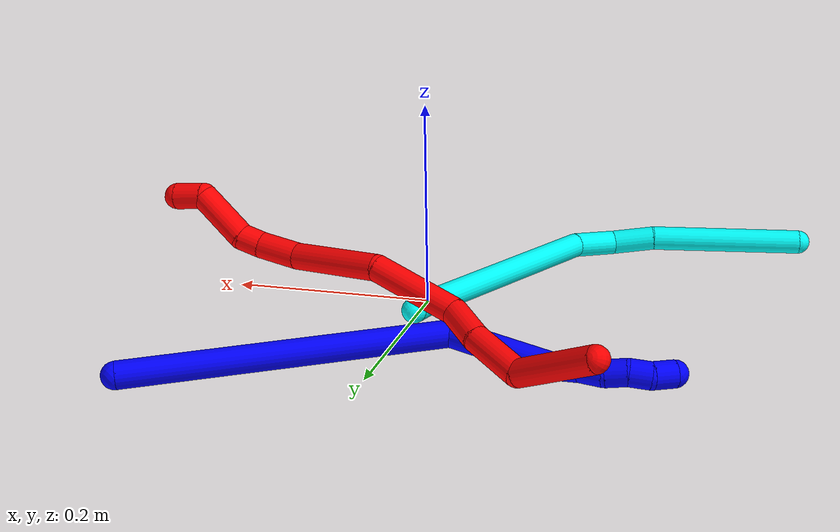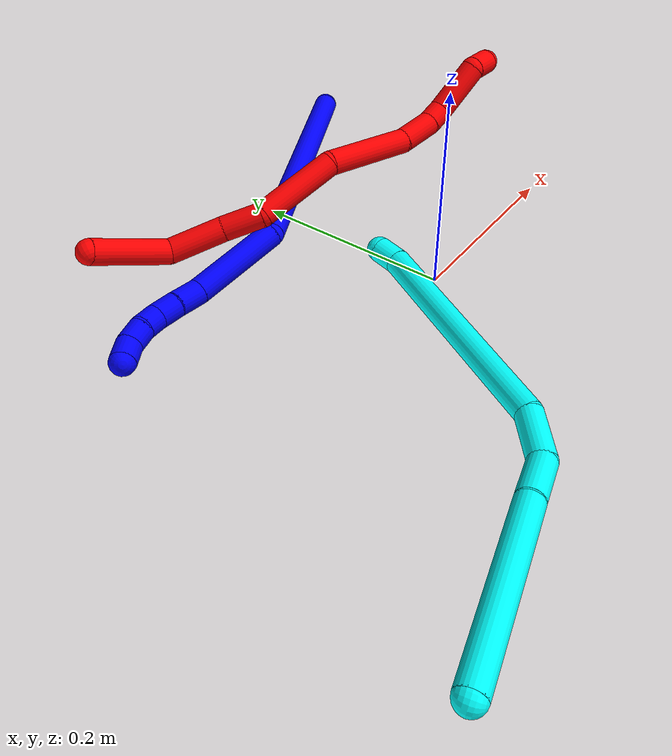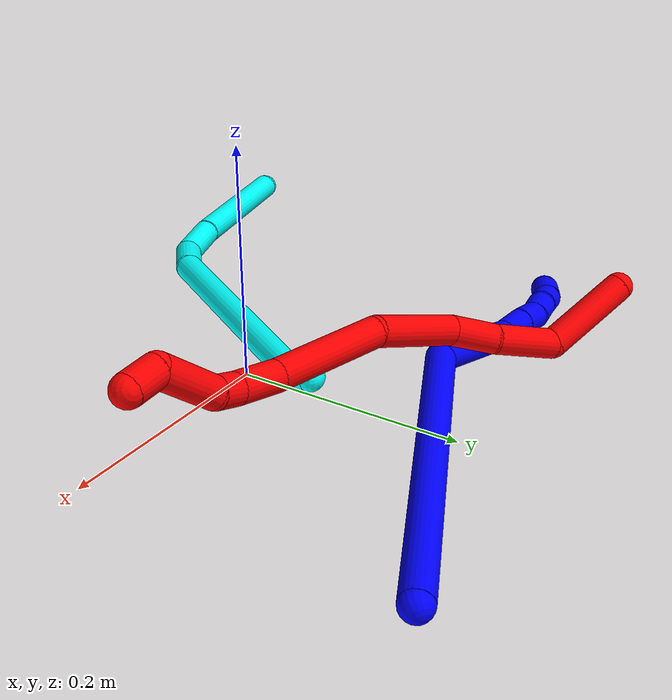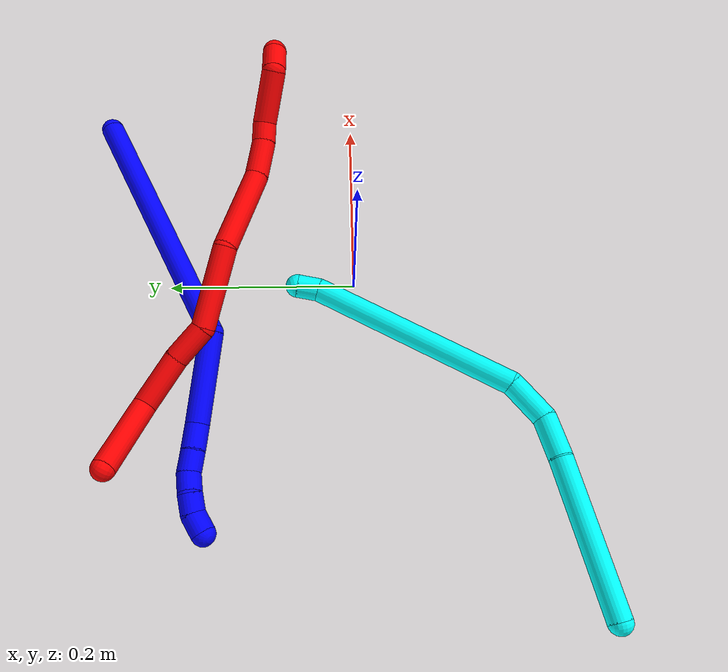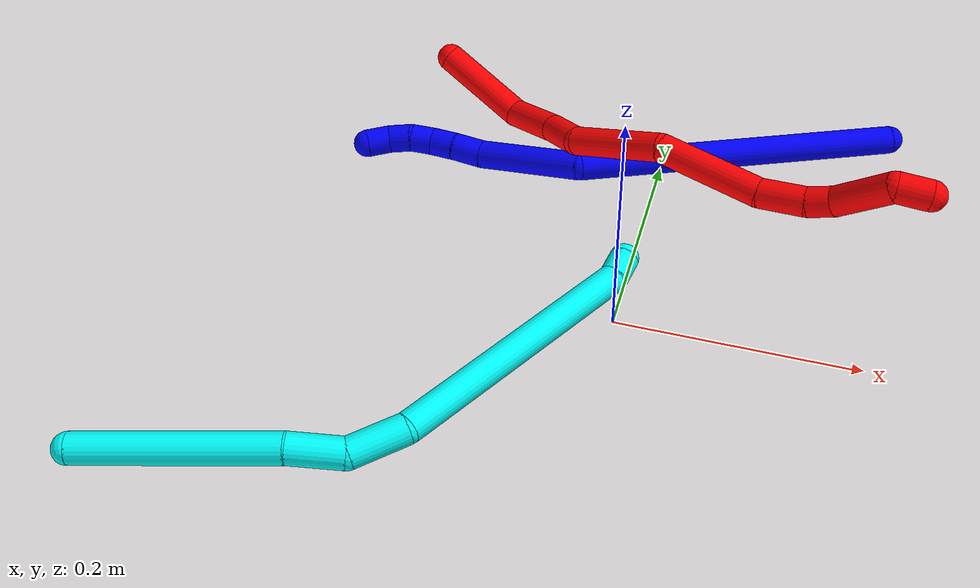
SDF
<sdf version="1.7">
 <world name="default">
  <model name="photoneo_s_sensor">
   <static>1</static>
   <pose>0 0 2 1.57079 1.57079 3.14159</pose>
   <link name="link">
    <inertial><mass>0.1</mass></inertial>
    <sensor name="sensor" type="depth">
     <update_rate>30</update_rate>
     <camera>
      <horizontal_fov>1.22</horizontal_fov>
      <image><width>1920</width><height>1200</height><format>B8G8R8</format></image>
      <clip><near>0.1</near><far>4</far></clip>
      <depth_camera><output>points</output></depth_camera>
     </camera>
     <plugin name="camera_plugin" filename="libgazebo_ros_depth_camera.so">
      <baseline>0.2</baseline>
      <alwaysOn>1</alwaysOn>
      <updateRate>0.0</updateRate>
      <cameraName>camera_ir</cameraName>
      <imageTopicName>/camera/color/image_raw</imageTopicName>
      <cameraInfoTopicName>/camera/color/camera_info</cameraInfoTopicName>
      <depthImageTopicName>/camera/depth/image_raw</depthImageTopicName>
      <depthImageCameraInfoTopicName>/camera/depth/camera_info</depthImageCameraInfoTopicName>
      <pointCloudTopicName>/camera/depth/points</pointCloudTopicName>
      <frameName>fr_optical</frameName>
      <pointCloudCutoff>0.1</pointCloudCutoff>
      <pointCloudCutoffMax>2.0</pointCloudCutoffMax>
      <distortionK1>0</distortionK1>
      <distortionK2>0</distortionK2>
      <distortionK3>0</distortionK3>
      <distortionT1>0</distortionT1>
      <distortionT2>0</distortionT2>
      <CxPrime>0</CxPrime>
      <Cx>0</Cx>
      <Cy>0</Cy>
      <focalLength>0</focalLength>
      <hackBaseline>0</hackBaseline>
     </plugin>
    </sensor>
   </link>
  </model>
  <model name="bin">
   <static>1</static>
   <link name="bottom">
    <collision name="collision-bottom">
     <pose>0 0 -0.01 0 -0 0</pose>
     <geometry><box><size>0.8 0.6 0.02</size></box></geometry>
     <surface>
      <friction><ode><mu>100</mu><mu2>100</mu2></ode></friction>
      <contact><collide_bitmask>65535</collide_bitmask></contact>
     </surface>
    </collision>
   </link>
   <link name="west_wall">
    <collision name="collision-west_wall">
     <pose>-0.41 0 0.1 0 -0 0</pose>
     <geometry><box><size>0.02 0.6 0.2</size></box></geometry>
     <surface>
      <friction><ode><mu>100</mu><mu2>100</mu2></ode></friction>
      <contact><collide_bitmask>65535</collide_bitmask></contact>
     </surface>
    </collision>
   </link>
   <link name="east_wall">
    <collision name="collision-east_wall">
     <pose>0.41 0 0.1 0 -0 0</pose>
     <geometry><box><size>0.02 0.6 0.2</size></box></geometry>
     <surface>
      <friction><ode><mu>100</mu><mu2>100</mu2></ode></friction>
      <contact><collide_bitmask>65535</collide_bitmask></contact>
     </surface>
    </collision>
   </link>
   <link name="south_wall">
    <collision name="collision-south_wall">
     <pose>0 -0.31 0.1 0 -0 0</pose>
     <geometry><box><size>0.8 0.02 0.2</size></box></geometry>
     <surface>
      <friction><ode><mu>100</mu><mu2>100</mu2></ode></friction>
      <contact><collide_bitmask>65535</collide_bitmask></contact>
     </surface>
    </collision>
   </link>
   <link name="north_wall">
    <collision name="collision-north_wall">
     <pose>0 0.31 0.1 0 -0 0</pose>
     <geometry><box><size>0.8 0.02 0.2</size></box></geometry>
     <surface>
      <friction><ode><mu>100</mu><mu2>100</mu2></ode></friction>
      <contact><collide_bitmask>65535</collide_bitmask></contact>
     </surface>
    </collision>
   </link>
  </model>
  <model name="1">
   <static>0</static>
   <link name="1">
    <collision name="collision-cylinder-e_1_1_4">
     <pose>-0.075623 -0.041226 -0.117904 2.80522 -0.544417 -2.04864</pose>
     <geometry><cylinder><radius>0.0125</radius><length>0.292026</length></cylinder></geometry>
     <surface>
      <friction><ode><mu>1.16</mu><mu2>1.16</mu2><slip1>0</slip1><slip2>0</slip2></ode></friction>
      <contact><ode><kp>1e+06</kp><kd>1</kd><max_vel>0</max_vel><min_depth>0.001</min_depth></ode></contact>
     </surface>
    </collision>
    <visual name="visual-cylinder-e_1_1_4">
     <pose>-0.075623 -0.041226 -0.117904 2.80522 -0.544417 -2.04864</pose>
     <geometry><cylinder><radius>0.0125</radius><length>0.292026</length></cylinder></geometry>
     <material><ambient>0 0 1 1</ambient></material>
    </visual>
    <collision name="collision-cylinder-e_2_4_5">
     <pose>-0.181587 -0.115326 -0.253168 2.05667 -0.684514 -1.06763</pose>
     <geometry><cylinder><radius>0.0125</radius><length>0.09597</length></cylinder></geometry>
     <surface>
      <friction><ode><mu>1.16</mu><mu2>1.16</mu2><slip1>0</slip1><slip2>0</slip2></ode></friction>
      <contact><ode><kp>1e+06</kp><kd>1</kd><max_vel>0</max_vel><min_depth>0.001</min_depth></ode></contact>
     </surface>
    </collision>
    <visual name="visual-cylinder-e_2_4_5">
     <pose>-0.181587 -0.115326 -0.253168 2.05667 -0.684514 -1.06763</pose>
     <geometry><cylinder><radius>0.0125</radius><length>0.09597</length></cylinder></geometry>
     <material><ambient>0 0 1 1</ambient></material>
    </visual>
    <collision name="collision-cylinder-e_3_5_6">
     <pose>-0.218315 -0.158137 -0.27725 2.16553 -0.489207 -0.879018</pose>
     <geometry><cylinder><radius>0.0125</radius><length>0.027185</length></cylinder></geometry>
     <surface>
      <friction><ode><mu>1.16</mu><mu2>1.16</mu2><slip1>0</slip1><slip2>0</slip2></ode></friction>
      <contact><ode><kp>1e+06</kp><kd>1</kd><max_vel>0</max_vel><min_depth>0.001</min_depth></ode></contact>
     </surface>
    </collision>
    <visual name="visual-cylinder-e_3_5_6">
     <pose>-0.218315 -0.158137 -0.27725 2.16553 -0.489207 -0.879018</pose>
     <geometry><cylinder><radius>0.0125</radius><length>0.027185</length></cylinder></geometry>
     <material><ambient>0 0 1 1</ambient></material>
    </visual>
    <collision name="collision-cylinder-e_4_6_7">
     <pose>-0.23077 -0.176356 -0.28873 2.09227 -0.566 -0.931222</pose>
     <geometry><cylinder><radius>0.0125</radius><length>0.022628</length></cylinder></geometry>
     <surface>
      <friction><ode><mu>1.16</mu><mu2>1.16</mu2><slip1>0</slip1><slip2>0</slip2></ode></friction>
      <contact><ode><kp>1e+06</kp><kd>1</kd><max_vel>0</max_vel><min_depth>0.001</min_depth></ode></contact>
     </surface>
    </collision>
    <visual name="visual-cylinder-e_4_6_7">
     <pose>-0.23077 -0.176356 -0.28873 2.09227 -0.566 -0.931222</pose>
     <geometry><cylinder><radius>0.0125</radius><length>0.022628</length></cylinder></geometry>
     <material><ambient>0 0 1 1</ambient></material>
    </visual>
    <collision name="collision-cylinder-e_5_7_8">
     <pose>-0.241462 -0.190544 -0.300319 2.42859 -0.473254 -1.14925</pose>
     <geometry><cylinder><radius>0.0125</radius><length>0.020296</length></cylinder></geometry>
     <surface>
      <friction><ode><mu>1.16</mu><mu2>1.16</mu2><slip1>0</slip1><slip2>0</slip2></ode></friction>
      <contact><ode><kp>1e+06</kp><kd>1</kd><max_vel>0</max_vel><min_depth>0.001</min_depth></ode></contact>
     </surface>
    </collision>
    <visual name="visual-cylinder-e_5_7_8">
     <pose>-0.241462 -0.190544 -0.300319 2.42859 -0.473254 -1.14925</pose>
     <geometry><cylinder><radius>0.0125</radius><length>0.020296</length></cylinder></geometry>
     <material><ambient>0 0 1 1</ambient></material>
    </visual>
    <collision name="collision-cylinder-e_6_8_9">
     <pose>-0.252862 -0.201232 -0.313165 2.47 -0.722709 -1.65036</pose>
     <geometry><cylinder><radius>0.0125</radius><length>0.020484</length></cylinder></geometry>
     <surface>
      <friction><ode><mu>1.16</mu><mu2>1.16</mu2><slip1>0</slip1><slip2>0</slip2></ode></friction>
      <contact><ode><kp>1e+06</kp><kd>1</kd><max_vel>0</max_vel><min_depth>0.001</min_depth></ode></contact>
     </surface>
    </collision>
    <visual name="visual-cylinder-e_6_8_9">
     <pose>-0.252862 -0.201232 -0.313165 2.47 -0.722709 -1.65036</pose>
     <geometry><cylinder><radius>0.0125</radius><length>0.020484</length></cylinder></geometry>
     <material><ambient>0 0 1 1</ambient></material>
    </visual>
    <collision name="collision-cylinder-e_7_9_2">
     <pose>-0.265823 -0.208106 -0.327661 2.89963 -0.616109 -2.41164</pose>
     <geometry><cylinder><radius>0.0125</radius><length>0.021411</length></cylinder></geometry>
     <surface>
      <friction><ode><mu>1.16</mu><mu2>1.16</mu2><slip1>0</slip1><slip2>0</slip2></ode></friction>
      <contact><ode><kp>1e+06</kp><kd>1</kd><max_vel>0</max_vel><min_depth>0.001</min_depth></ode></contact>
     </surface>
    </collision>
    <visual name="visual-cylinder-e_7_9_2">
     <pose>-0.265823 -0.208106 -0.327661 2.89963 -0.616109 -2.41164</pose>
     <geometry><cylinder><radius>0.0125</radius><length>0.021411</length></cylinder></geometry>
     <material><ambient>0 0 1 1</ambient></material>
    </visual>
    <collision name="collision-sphere-2">
     <pose>-0.272009 -0.210199 -0.336144 0 -0 0</pose>
     <geometry><sphere><radius>0.0125</radius></sphere></geometry>
     <surface>
      <friction><ode><mu>1.16</mu><mu2>1.16</mu2><slip1>0</slip1><slip2>0</slip2></ode></friction>
      <contact><ode><kp>1e+06</kp><kd>1</kd><max_vel>0</max_vel><min_depth>0.001</min_depth></ode></contact>
     </surface>
    </collision>
    <visual name="visual-sphere-2">
     <pose>-0.272009 -0.210199 -0.336144 0 -0 0</pose>
     <geometry><sphere><radius>0.0125</radius></sphere></geometry>
     <material><ambient>0 0 1 1</ambient></material>
    </visual>
    <collision name="collision-sphere-9">
     <pose>-0.259636 -0.206012 -0.319179 0 -0 0</pose>
     <geometry><sphere><radius>0.0125</radius></sphere></geometry>
     <surface>
      <friction><ode><mu>1.16</mu><mu2>1.16</mu2><slip1>0</slip1><slip2>0</slip2></ode></friction>
      <contact><ode><kp>1e+06</kp><kd>1</kd><max_vel>0</max_vel><min_depth>0.001</min_depth></ode></contact>
     </surface>
    </collision>
    <visual name="visual-sphere-9">
     <pose>-0.259636 -0.206012 -0.319179 0 -0 0</pose>
     <geometry><sphere><radius>0.0125</radius></sphere></geometry>
     <material><ambient>0 0 1 1</ambient></material>
    </visual>
    <collision name="collision-sphere-4">
     <pose>-0.151246 -0.082453 -0.235807 0 -0 0</pose>
     <geometry><sphere><radius>0.0125</radius></sphere></geometry>
     <surface>
      <friction><ode><mu>1.16</mu><mu2>1.16</mu2><slip1>0</slip1><slip2>0</slip2></ode></friction>
      <contact><ode><kp>1e+06</kp><kd>1</kd><max_vel>0</max_vel><min_depth>0.001</min_depth></ode></contact>
     </surface>
    </collision>
    <visual name="visual-sphere-4">
     <pose>-0.151246 -0.082453 -0.235807 0 -0 0</pose>
     <geometry><sphere><radius>0.0125</radius></sphere></geometry>
     <material><ambient>0 0 1 1</ambient></material>
    </visual>
    <collision name="collision-sphere-1">
     <geometry><sphere><radius>0.0125</radius></sphere></geometry>
     <surface>
      <friction><ode><mu>1.16</mu><mu2>1.16</mu2><slip1>0</slip1><slip2>0</slip2></ode></friction>
      <contact><ode><kp>1e+06</kp><kd>1</kd><max_vel>0</max_vel><min_depth>0.001</min_depth></ode></contact>
     </surface>
    </collision>
    <visual name="visual-sphere-1">
     <geometry><sphere><radius>0.0125</radius></sphere></geometry>
     <material><ambient>0 0 1 1</ambient></material>
    </visual>
    <collision name="collision-sphere-8">
     <pose>-0.246088 -0.196453 -0.307152 0 -0 0</pose>
     <geometry><sphere><radius>0.0125</radius></sphere></geometry>
     <surface>
      <friction><ode><mu>1.16</mu><mu2>1.16</mu2><slip1>0</slip1><slip2>0</slip2></ode></friction>
      <contact><ode><kp>1e+06</kp><kd>1</kd><max_vel>0</max_vel><min_depth>0.001</min_depth></ode></contact>
     </surface>
    </collision>
    <visual name="visual-sphere-8">
     <pose>-0.246088 -0.196453 -0.307152 0 -0 0</pose>
     <geometry><sphere><radius>0.0125</radius></sphere></geometry>
     <material><ambient>0 0 1 1</ambient></material>
    </visual>
    <collision name="collision-sphere-5">
     <pose>-0.211928 -0.148199 -0.270528 0 -0 0</pose>
     <geometry><sphere><radius>0.0125</radius></sphere></geometry>
     <surface>
      <friction><ode><mu>1.16</mu><mu2>1.16</mu2><slip1>0</slip1><slip2>0</slip2></ode></friction>
      <contact><ode><kp>1e+06</kp><kd>1</kd><max_vel>0</max_vel><min_depth>0.001</min_depth></ode></contact>
     </surface>
    </collision>
    <visual name="visual-sphere-5">
     <pose>-0.211928 -0.148199 -0.270528 0 -0 0</pose>
     <geometry><sphere><radius>0.0125</radius></sphere></geometry>
     <material><ambient>0 0 1 1</ambient></material>
    </visual>
    <collision name="collision-sphere-6">
     <pose>-0.224703 -0.168075 -0.283973 0 -0 0</pose>
     <geometry><sphere><radius>0.0125</radius></sphere></geometry>
     <surface>
      <friction><ode><mu>1.16</mu><mu2>1.16</mu2><slip1>0</slip1><slip2>0</slip2></ode></friction>
      <contact><ode><kp>1e+06</kp><kd>1</kd><max_vel>0</max_vel><min_depth>0.001</min_depth></ode></contact>
     </surface>
    </collision>
    <visual name="visual-sphere-6">
     <pose>-0.224703 -0.168075 -0.283973 0 -0 0</pose>
     <geometry><sphere><radius>0.0125</radius></sphere></geometry>
     <material><ambient>0 0 1 1</ambient></material>
    </visual>
    <collision name="collision-sphere-7">
     <pose>-0.236837 -0.184636 -0.293487 0 -0 0</pose>
     <geometry><sphere><radius>0.0125</radius></sphere></geometry>
     <surface>
      <friction><ode><mu>1.16</mu><mu2>1.16</mu2><slip1>0</slip1><slip2>0</slip2></ode></friction>
      <contact><ode><kp>1e+06</kp><kd>1</kd><max_vel>0</max_vel><min_depth>0.001</min_depth></ode></contact>
     </surface>
    </collision>
    <visual name="visual-sphere-7">
     <pose>-0.236837 -0.184636 -0.293487 0 -0 0</pose>
     <geometry><sphere><radius>0.0125</radius></sphere></geometry>
     <material><ambient>0 0 1 1</ambient></material>
    </visual>
    <inertial>
     <pose>-0.132879 -0.087683 -0.184647 0 -0 0</pose>
     <mass>0.5</mass>
     <inertia>
      <ixx>-0.002455</ixx>
      <ixy>0</ixy>
      <ixz>0</ixz>
      <iyy>-0.000415</iyy>
      <iyz>0</iyz>
      <izz>0.001756</izz>
     </inertia>
    </inertial>
   </link>
   <pose>0.197516 0.27701 0.016604 -2.67856 -0.976727 0.346379</pose>
  </model>
  <model name="2">
   <static>0</static>
   <link name="2">
    <collision name="collision-cylinder-e_1_1_4">
     <pose>0.03954 0.009097 -0.006159 -2.16599 1.2998 -1.92273</pose>
     <geometry><cylinder><radius>0.0125</radius><length>0.082076</length></cylinder></geometry>
     <surface>
      <friction><ode><mu>1.16</mu><mu2>1.16</mu2><slip1>0</slip1><slip2>0</slip2></ode></friction>
      <contact><ode><kp>1e+06</kp><kd>1</kd><max_vel>0</max_vel><min_depth>0.001</min_depth></ode></contact>
     </surface>
    </collision>
    <visual name="visual-cylinder-e_1_1_4">
     <pose>0.03954 0.009097 -0.006159 -2.16599 1.2998 -1.92273</pose>
     <geometry><cylinder><radius>0.0125</radius><length>0.082076</length></cylinder></geometry>
     <material><ambient>1 0 0 1</ambient></material>
    </visual>
    <collision name="collision-cylinder-e_2_4_5">
     <pose>0.104141 0.00524 -0.014593 1.74461 1.08751 1.24797</pose>
     <geometry><cylinder><radius>0.0125</radius><length>0.056603</length></cylinder></geometry>
     <surface>
      <friction><ode><mu>1.16</mu><mu2>1.16</mu2><slip1>0</slip1><slip2>0</slip2></ode></friction>
      <contact><ode><kp>1e+06</kp><kd>1</kd><max_vel>0</max_vel><min_depth>0.001</min_depth></ode></contact>
     </surface>
    </collision>
    <visual name="visual-cylinder-e_2_4_5">
     <pose>0.104141 0.00524 -0.014593 1.74461 1.08751 1.24797</pose>
     <geometry><cylinder><radius>0.0125</radius><length>0.056603</length></cylinder></geometry>
     <material><ambient>1 0 0 1</ambient></material>
    </visual>
    <collision name="collision-cylinder-e_3_5_6">
     <pose>0.14551 -0.018873 -0.020625 1.89563 0.945479 1.23729</pose>
     <geometry><cylinder><radius>0.0125</radius><length>0.040232</length></cylinder></geometry>
     <surface>
      <friction><ode><mu>1.16</mu><mu2>1.16</mu2><slip1>0</slip1><slip2>0</slip2></ode></friction>
      <contact><ode><kp>1e+06</kp><kd>1</kd><max_vel>0</max_vel><min_depth>0.001</min_depth></ode></contact>
     </surface>
    </collision>
    <visual name="visual-cylinder-e_3_5_6">
     <pose>0.14551 -0.018873 -0.020625 1.89563 0.945479 1.23729</pose>
     <geometry><cylinder><radius>0.0125</radius><length>0.040232</length></cylinder></geometry>
     <material><ambient>1 0 0 1</ambient></material>
    </visual>
    <collision name="collision-cylinder-e_4_6_7">
     <pose>0.200514 -0.04499 -0.014412 0.982848 1.13587 0.658167</pose>
     <geometry><cylinder><radius>0.0125</radius><length>0.085333</length></cylinder></geometry>
     <surface>
      <friction><ode><mu>1.16</mu><mu2>1.16</mu2><slip1>0</slip1><slip2>0</slip2></ode></friction>
      <contact><ode><kp>1e+06</kp><kd>1</kd><max_vel>0</max_vel><min_depth>0.001</min_depth></ode></contact>
     </surface>
    </collision>
    <visual name="visual-cylinder-e_4_6_7">
     <pose>0.200514 -0.04499 -0.014412 0.982848 1.13587 0.658167</pose>
     <geometry><cylinder><radius>0.0125</radius><length>0.085333</length></cylinder></geometry>
     <material><ambient>1 0 0 1</ambient></material>
    </visual>
    <collision name="collision-cylinder-e_5_7_8">
     <pose>0.28506 -0.062121 -0.003018 0.99075 1.51421 0.944137</pose>
     <geometry><cylinder><radius>0.0125</radius><length>0.091851</length></cylinder></geometry>
     <surface>
      <friction><ode><mu>1.16</mu><mu2>1.16</mu2><slip1>0</slip1><slip2>0</slip2></ode></friction>
      <contact><ode><kp>1e+06</kp><kd>1</kd><max_vel>0</max_vel><min_depth>0.001</min_depth></ode></contact>
     </surface>
    </collision>
    <visual name="visual-cylinder-e_5_7_8">
     <pose>0.28506 -0.062121 -0.003018 0.99075 1.51421 0.944137</pose>
     <geometry><cylinder><radius>0.0125</radius><length>0.091851</length></cylinder></geometry>
     <material><ambient>1 0 0 1</ambient></material>
    </visual>
    <collision name="collision-cylinder-e_6_8_9">
     <pose>0.349955 -0.067475 0.003178 0.588057 1.27825 0.442705</pose>
     <geometry><cylinder><radius>0.0125</radius><length>0.039776</length></cylinder></geometry>
     <surface>
      <friction><ode><mu>1.16</mu><mu2>1.16</mu2><slip1>0</slip1><slip2>0</slip2></ode></friction>
      <contact><ode><kp>1e+06</kp><kd>1</kd><max_vel>0</max_vel><min_depth>0.001</min_depth></ode></contact>
     </surface>
    </collision>
    <visual name="visual-cylinder-e_6_8_9">
     <pose>0.349955 -0.067475 0.003178 0.588057 1.27825 0.442705</pose>
     <geometry><cylinder><radius>0.0125</radius><length>0.039776</length></cylinder></geometry>
     <material><ambient>1 0 0 1</ambient></material>
    </visual>
    <collision name="collision-cylinder-e_7_9_10">
     <pose>0.378534 -0.073259 0.012423 0.526815 1.07363 0.318256</pose>
     <geometry><cylinder><radius>0.0125</radius><length>0.0217</length></cylinder></geometry>
     <surface>
      <friction><ode><mu>1.16</mu><mu2>1.16</mu2><slip1>0</slip1><slip2>0</slip2></ode></friction>
      <contact><ode><kp>1e+06</kp><kd>1</kd><max_vel>0</max_vel><min_depth>0.001</min_depth></ode></contact>
     </surface>
    </collision>
    <visual name="visual-cylinder-e_7_9_10">
     <pose>0.378534 -0.073259 0.012423 0.526815 1.07363 0.318256</pose>
     <geometry><cylinder><radius>0.0125</radius><length>0.0217</length></cylinder></geometry>
     <material><ambient>1 0 0 1</ambient></material>
    </visual>
    <collision name="collision-cylinder-e_8_10_11">
     <pose>0.40748 -0.092549 0.026998 1.02649 0.782901 0.457146</pose>
     <geometry><cylinder><radius>0.0125</radius><length>0.055037</length></cylinder></geometry>
     <surface>
      <friction><ode><mu>1.16</mu><mu2>1.16</mu2><slip1>0</slip1><slip2>0</slip2></ode></friction>
      <contact><ode><kp>1e+06</kp><kd>1</kd><max_vel>0</max_vel><min_depth>0.001</min_depth></ode></contact>
     </surface>
    </collision>
    <visual name="visual-cylinder-e_8_10_11">
     <pose>0.40748 -0.092549 0.026998 1.02649 0.782901 0.457146</pose>
     <geometry><cylinder><radius>0.0125</radius><length>0.055037</length></cylinder></geometry>
     <material><ambient>1 0 0 1</ambient></material>
    </visual>
    <collision name="collision-cylinder-e_9_11_2">
     <pose>0.439907 -0.107681 0.041065 -0.373824 1.25452 -0.272498</pose>
     <geometry><cylinder><radius>0.0125</radius><length>0.027393</length></cylinder></geometry>
     <surface>
      <friction><ode><mu>1.16</mu><mu2>1.16</mu2><slip1>0</slip1><slip2>0</slip2></ode></friction>
      <contact><ode><kp>1e+06</kp><kd>1</kd><max_vel>0</max_vel><min_depth>0.001</min_depth></ode></contact>
     </surface>
    </collision>
    <visual name="visual-cylinder-e_9_11_2">
     <pose>0.439907 -0.107681 0.041065 -0.373824 1.25452 -0.272498</pose>
     <geometry><cylinder><radius>0.0125</radius><length>0.027393</length></cylinder></geometry>
     <material><ambient>1 0 0 1</ambient></material>
    </visual>
    <collision name="collision-sphere-2">
     <pose>0.452925 -0.106126 0.04503 0 -0 0</pose>
     <geometry><sphere><radius>0.0125</radius></sphere></geometry>
     <surface>
      <friction><ode><mu>1.16</mu><mu2>1.16</mu2><slip1>0</slip1><slip2>0</slip2></ode></friction>
      <contact><ode><kp>1e+06</kp><kd>1</kd><max_vel>0</max_vel><min_depth>0.001</min_depth></ode></contact>
     </surface>
    </collision>
    <visual name="visual-sphere-2">
     <pose>0.452925 -0.106126 0.04503 0 -0 0</pose>
     <geometry><sphere><radius>0.0125</radius></sphere></geometry>
     <material><ambient>1 0 0 1</ambient></material>
    </visual>
    <collision name="collision-sphere-11">
     <pose>0.42689 -0.109237 0.037099 0 -0 0</pose>
     <geometry><sphere><radius>0.0125</radius></sphere></geometry>
     <surface>
      <friction><ode><mu>1.16</mu><mu2>1.16</mu2><slip1>0</slip1><slip2>0</slip2></ode></friction>
      <contact><ode><kp>1e+06</kp><kd>1</kd><max_vel>0</max_vel><min_depth>0.001</min_depth></ode></contact>
     </surface>
    </collision>
    <visual name="visual-sphere-11">
     <pose>0.42689 -0.109237 0.037099 0 -0 0</pose>
     <geometry><sphere><radius>0.0125</radius></sphere></geometry>
     <material><ambient>1 0 0 1</ambient></material>
    </visual>
    <collision name="collision-sphere-10">
     <pose>0.38807 -0.075861 0.016896 0 -0 0</pose>
     <geometry><sphere><radius>0.0125</radius></sphere></geometry>
     <surface>
      <friction><ode><mu>1.16</mu><mu2>1.16</mu2><slip1>0</slip1><slip2>0</slip2></ode></friction>
      <contact><ode><kp>1e+06</kp><kd>1</kd><max_vel>0</max_vel><min_depth>0.001</min_depth></ode></contact>
     </surface>
    </collision>
    <visual name="visual-sphere-10">
     <pose>0.38807 -0.075861 0.016896 0 -0 0</pose>
     <geometry><sphere><radius>0.0125</radius></sphere></geometry>
     <material><ambient>1 0 0 1</ambient></material>
    </visual>
    <collision name="collision-sphere-9">
     <pose>0.368997 -0.070657 0.00795 0 -0 0</pose>
     <geometry><sphere><radius>0.0125</radius></sphere></geometry>
     <surface>
      <friction><ode><mu>1.16</mu><mu2>1.16</mu2><slip1>0</slip1><slip2>0</slip2></ode></friction>
      <contact><ode><kp>1e+06</kp><kd>1</kd><max_vel>0</max_vel><min_depth>0.001</min_depth></ode></contact>
     </surface>
    </collision>
    <visual name="visual-sphere-9">
     <pose>0.368997 -0.070657 0.00795 0 -0 0</pose>
     <geometry><sphere><radius>0.0125</radius></sphere></geometry>
     <material><ambient>1 0 0 1</ambient></material>
    </visual>
    <collision name="collision-sphere-4">
     <pose>0.07908 0.018193 -0.012319 0 -0 0</pose>
     <geometry><sphere><radius>0.0125</radius></sphere></geometry>
     <surface>
      <friction><ode><mu>1.16</mu><mu2>1.16</mu2><slip1>0</slip1><slip2>0</slip2></ode></friction>
      <contact><ode><kp>1e+06</kp><kd>1</kd><max_vel>0</max_vel><min_depth>0.001</min_depth></ode></contact>
     </surface>
    </collision>
    <visual name="visual-sphere-4">
     <pose>0.07908 0.018193 -0.012319 0 -0 0</pose>
     <geometry><sphere><radius>0.0125</radius></sphere></geometry>
     <material><ambient>1 0 0 1</ambient></material>
    </visual>
    <collision name="collision-sphere-1">
     <geometry><sphere><radius>0.0125</radius></sphere></geometry>
     <surface>
      <friction><ode><mu>1.16</mu><mu2>1.16</mu2><slip1>0</slip1><slip2>0</slip2></ode></friction>
      <contact><ode><kp>1e+06</kp><kd>1</kd><max_vel>0</max_vel><min_depth>0.001</min_depth></ode></contact>
     </surface>
    </collision>
    <visual name="visual-sphere-1">
     <geometry><sphere><radius>0.0125</radius></sphere></geometry>
     <material><ambient>1 0 0 1</ambient></material>
    </visual>
    <collision name="collision-sphere-8">
     <pose>0.330912 -0.064294 -0.001594 0 -0 0</pose>
     <geometry><sphere><radius>0.0125</radius></sphere></geometry>
     <surface>
      <friction><ode><mu>1.16</mu><mu2>1.16</mu2><slip1>0</slip1><slip2>0</slip2></ode></friction>
      <contact><ode><kp>1e+06</kp><kd>1</kd><max_vel>0</max_vel><min_depth>0.001</min_depth></ode></contact>
     </surface>
    </collision>
    <visual name="visual-sphere-8">
     <pose>0.330912 -0.064294 -0.001594 0 -0 0</pose>
     <geometry><sphere><radius>0.0125</radius></sphere></geometry>
     <material><ambient>1 0 0 1</ambient></material>
    </visual>
    <collision name="collision-sphere-5">
     <pose>0.129201 -0.007713 -0.016867 0 -0 0</pose>
     <geometry><sphere><radius>0.0125</radius></sphere></geometry>
     <surface>
      <friction><ode><mu>1.16</mu><mu2>1.16</mu2><slip1>0</slip1><slip2>0</slip2></ode></friction>
      <contact><ode><kp>1e+06</kp><kd>1</kd><max_vel>0</max_vel><min_depth>0.001</min_depth></ode></contact>
     </surface>
    </collision>
    <visual name="visual-sphere-5">
     <pose>0.129201 -0.007713 -0.016867 0 -0 0</pose>
     <geometry><sphere><radius>0.0125</radius></sphere></geometry>
     <material><ambient>1 0 0 1</ambient></material>
    </visual>
    <collision name="collision-sphere-6">
     <pose>0.16182 -0.030032 -0.024383 0 -0 0</pose>
     <geometry><sphere><radius>0.0125</radius></sphere></geometry>
     <surface>
      <friction><ode><mu>1.16</mu><mu2>1.16</mu2><slip1>0</slip1><slip2>0</slip2></ode></friction>
      <contact><ode><kp>1e+06</kp><kd>1</kd><max_vel>0</max_vel><min_depth>0.001</min_depth></ode></contact>
     </surface>
    </collision>
    <visual name="visual-sphere-6">
     <pose>0.16182 -0.030032 -0.024383 0 -0 0</pose>
     <geometry><sphere><radius>0.0125</radius></sphere></geometry>
     <material><ambient>1 0 0 1</ambient></material>
    </visual>
    <collision name="collision-sphere-7">
     <pose>0.239208 -0.059949 -0.004441 0 -0 0</pose>
     <geometry><sphere><radius>0.0125</radius></sphere></geometry>
     <surface>
      <friction><ode><mu>1.16</mu><mu2>1.16</mu2><slip1>0</slip1><slip2>0</slip2></ode></friction>
      <contact><ode><kp>1e+06</kp><kd>1</kd><max_vel>0</max_vel><min_depth>0.001</min_depth></ode></contact>
     </surface>
    </collision>
    <visual name="visual-sphere-7">
     <pose>0.239208 -0.059949 -0.004441 0 -0 0</pose>
     <geometry><sphere><radius>0.0125</radius></sphere></geometry>
     <material><ambient>1 0 0 1</ambient></material>
    </visual>
    <inertial>
     <pose>0.229797 -0.043156 -0.001323 0 -0 0</pose>
     <mass>0.5</mass>
     <inertia>
      <ixx>9.1e-05</ixx>
      <ixy>0</ixy>
      <ixz>0</ixz>
      <iyy>0.000219</iyy>
      <iyz>0</iyz>
      <izz>-0.000171</izz>
     </inertia>
    </inertial>
   </link>
   <pose>-0.212079 0.239916 0.057292 -1.09495 0.118607 -0.328464</pose>
  </model>
  <model name="3">
   <static>0</static>
   <link name="3">
    <collision name="collision-cylinder-e_1_1_4">
     <pose>-0.002628 -0.004369 0.010788 0.384826 -0.222079 -0.043438</pose>
     <geometry><cylinder><radius>0.0125</radius><length>0.023864</length></cylinder></geometry>
     <surface>
      <friction><ode><mu>1.16</mu><mu2>1.16</mu2><slip1>0</slip1><slip2>0</slip2></ode></friction>
      <contact><ode><kp>1e+06</kp><kd>1</kd><max_vel>0</max_vel><min_depth>0.001</min_depth></ode></contact>
     </surface>
    </collision>
    <visual name="visual-cylinder-e_1_1_4">
     <pose>-0.002628 -0.004369 0.010788 0.384826 -0.222079 -0.043438</pose>
     <geometry><cylinder><radius>0.0125</radius><length>0.023864</length></cylinder></geometry>
     <material><ambient>0.003922 1 0.996078 1</ambient></material>
    </visual>
    <collision name="collision-cylinder-e_2_4_5">
     <pose>-0.056091 -0.07068 0.101335 0.660307 -0.466347 -0.162418</pose>
     <geometry><cylinder><radius>0.0125</radius><length>0.226119</length></cylinder></geometry>
     <surface>
      <friction><ode><mu>1.16</mu><mu2>1.16</mu2><slip1>0</slip1><slip2>0</slip2></ode></friction>
      <contact><ode><kp>1e+06</kp><kd>1</kd><max_vel>0</max_vel><min_depth>0.001</min_depth></ode></contact>
     </surface>
    </collision>
    <visual name="visual-cylinder-e_2_4_5">
     <pose>-0.056091 -0.07068 0.101335 0.660307 -0.466347 -0.162418</pose>
     <geometry><cylinder><radius>0.0125</radius><length>0.226119</length></cylinder></geometry>
     <material><ambient>0.003922 1 0.996078 1</ambient></material>
    </visual>
    <collision name="collision-cylinder-e_3_5_6">
     <pose>-0.117378 -0.151055 0.191148 1.07155 -0.461898 -0.277418</pose>
     <geometry><cylinder><radius>0.0125</radius><length>0.04691</length></cylinder></geometry>
     <surface>
      <friction><ode><mu>1.16</mu><mu2>1.16</mu2><slip1>0</slip1><slip2>0</slip2></ode></friction>
      <contact><ode><kp>1e+06</kp><kd>1</kd><max_vel>0</max_vel><min_depth>0.001</min_depth></ode></contact>
     </surface>
    </collision>
    <visual name="visual-cylinder-e_3_5_6">
     <pose>-0.117378 -0.151055 0.191148 1.07155 -0.461898 -0.277418</pose>
     <geometry><cylinder><radius>0.0125</radius><length>0.04691</length></cylinder></geometry>
     <material><ambient>0.003922 1 0.996078 1</ambient></material>
    </visual>
    <collision name="collision-cylinder-e_4_6_7">
     <pose>-0.14179 -0.186798 0.200405 1.61669 -0.678169 -0.707486</pose>
     <geometry><cylinder><radius>0.0125</radius><length>0.044501</length></cylinder></geometry>
     <surface>
      <friction><ode><mu>1.16</mu><mu2>1.16</mu2><slip1>0</slip1><slip2>0</slip2></ode></friction>
      <contact><ode><kp>1e+06</kp><kd>1</kd><max_vel>0</max_vel><min_depth>0.001</min_depth></ode></contact>
     </surface>
    </collision>
    <visual name="visual-cylinder-e_4_6_7">
     <pose>-0.14179 -0.186798 0.200405 1.61669 -0.678169 -0.707486</pose>
     <geometry><cylinder><radius>0.0125</radius><length>0.044501</length></cylinder></geometry>
     <material><ambient>0.003922 1 0.996078 1</ambient></material>
    </visual>
    <collision name="collision-cylinder-e_5_7_2">
     <pose>-0.196312 -0.272227 0.197794 1.59746 -0.536912 -0.550709</pose>
     <geometry><cylinder><radius>0.0125</radius><length>0.158605</length></cylinder></geometry>
     <surface>
      <friction><ode><mu>1.16</mu><mu2>1.16</mu2><slip1>0</slip1><slip2>0</slip2></ode></friction>
      <contact><ode><kp>1e+06</kp><kd>1</kd><max_vel>0</max_vel><min_depth>0.001</min_depth></ode></contact>
     </surface>
    </collision>
    <visual name="visual-cylinder-e_5_7_2">
     <pose>-0.196312 -0.272227 0.197794 1.59746 -0.536912 -0.550709</pose>
     <geometry><cylinder><radius>0.0125</radius><length>0.158605</length></cylinder></geometry>
     <material><ambient>0.003922 1 0.996078 1</ambient></material>
    </visual>
    <collision name="collision-sphere-2">
     <pose>-0.236874 -0.340347 0.195977 0 -0 0</pose>
     <geometry><sphere><radius>0.0125</radius></sphere></geometry>
     <surface>
      <friction><ode><mu>1.16</mu><mu2>1.16</mu2><slip1>0</slip1><slip2>0</slip2></ode></friction>
      <contact><ode><kp>1e+06</kp><kd>1</kd><max_vel>0</max_vel><min_depth>0.001</min_depth></ode></contact>
     </surface>
    </collision>
    <visual name="visual-sphere-2">
     <pose>-0.236874 -0.340347 0.195977 0 -0 0</pose>
     <geometry><sphere><radius>0.0125</radius></sphere></geometry>
     <material><ambient>0.003922 1 0.996078 1</ambient></material>
    </visual>
    <collision name="collision-sphere-7">
     <pose>-0.15575 -0.204107 0.199611 0 -0 0</pose>
     <geometry><sphere><radius>0.0125</radius></sphere></geometry>
     <surface>
      <friction><ode><mu>1.16</mu><mu2>1.16</mu2><slip1>0</slip1><slip2>0</slip2></ode></friction>
      <contact><ode><kp>1e+06</kp><kd>1</kd><max_vel>0</max_vel><min_depth>0.001</min_depth></ode></contact>
     </surface>
    </collision>
    <visual name="visual-sphere-7">
     <pose>-0.15575 -0.204107 0.199611 0 -0 0</pose>
     <geometry><sphere><radius>0.0125</radius></sphere></geometry>
     <material><ambient>0.003922 1 0.996078 1</ambient></material>
    </visual>
    <collision name="collision-sphere-6">
     <pose>-0.127831 -0.169489 0.2012 0 -0 0</pose>
     <geometry><sphere><radius>0.0125</radius></sphere></geometry>
     <surface>
      <friction><ode><mu>1.16</mu><mu2>1.16</mu2><slip1>0</slip1><slip2>0</slip2></ode></friction>
      <contact><ode><kp>1e+06</kp><kd>1</kd><max_vel>0</max_vel><min_depth>0.001</min_depth></ode></contact>
     </surface>
    </collision>
    <visual name="visual-sphere-6">
     <pose>-0.127831 -0.169489 0.2012 0 -0 0</pose>
     <geometry><sphere><radius>0.0125</radius></sphere></geometry>
     <material><ambient>0.003922 1 0.996078 1</ambient></material>
    </visual>
    <collision name="collision-sphere-5">
     <pose>-0.106925 -0.13262 0.181095 0 -0 0</pose>
     <geometry><sphere><radius>0.0125</radius></sphere></geometry>
     <surface>
      <friction><ode><mu>1.16</mu><mu2>1.16</mu2><slip1>0</slip1><slip2>0</slip2></ode></friction>
      <contact><ode><kp>1e+06</kp><kd>1</kd><max_vel>0</max_vel><min_depth>0.001</min_depth></ode></contact>
     </surface>
    </collision>
    <visual name="visual-sphere-5">
     <pose>-0.106925 -0.13262 0.181095 0 -0 0</pose>
     <geometry><sphere><radius>0.0125</radius></sphere></geometry>
     <material><ambient>0.003922 1 0.996078 1</ambient></material>
    </visual>
    <collision name="collision-sphere-1">
     <geometry><sphere><radius>0.0125</radius></sphere></geometry>
     <surface>
      <friction><ode><mu>1.16</mu><mu2>1.16</mu2><slip1>0</slip1><slip2>0</slip2></ode></friction>
      <contact><ode><kp>1e+06</kp><kd>1</kd><max_vel>0</max_vel><min_depth>0.001</min_depth></ode></contact>
     </surface>
    </collision>
    <visual name="visual-sphere-1">
     <geometry><sphere><radius>0.0125</radius></sphere></geometry>
     <material><ambient>0.003922 1 0.996078 1</ambient></material>
    </visual>
    <collision name="collision-sphere-4">
     <pose>-0.005256 -0.008739 0.021576 0 -0 0</pose>
     <geometry><sphere><radius>0.0125</radius></sphere></geometry>
     <surface>
      <friction><ode><mu>1.16</mu><mu2>1.16</mu2><slip1>0</slip1><slip2>0</slip2></ode></friction>
      <contact><ode><kp>1e+06</kp><kd>1</kd><max_vel>0</max_vel><min_depth>0.001</min_depth></ode></contact>
     </surface>
    </collision>
    <visual name="visual-sphere-4">
     <pose>-0.005256 -0.008739 0.021576 0 -0 0</pose>
     <geometry><sphere><radius>0.0125</radius></sphere></geometry>
     <material><ambient>0.003922 1 0.996078 1</ambient></material>
    </visual>
    <inertial>
     <pose>-0.111396 -0.149323 0.144855 0 -0 0</pose>
     <mass>0.5</mass>
     <inertia>
      <ixx>0.000803</ixx>
      <ixy>0</ixy>
      <ixz>0</ixz>
      <iyy>0.000569</iyy>
      <iyz>0</iyz>
      <izz>0.001476</izz>
     </inertia>
    </inertial>
   </link>
   <pose>-0.00461 0.06114 0.013647 1.72979 0.995102 0.404464</pose>
  </model>
 </world>
</sdf>
